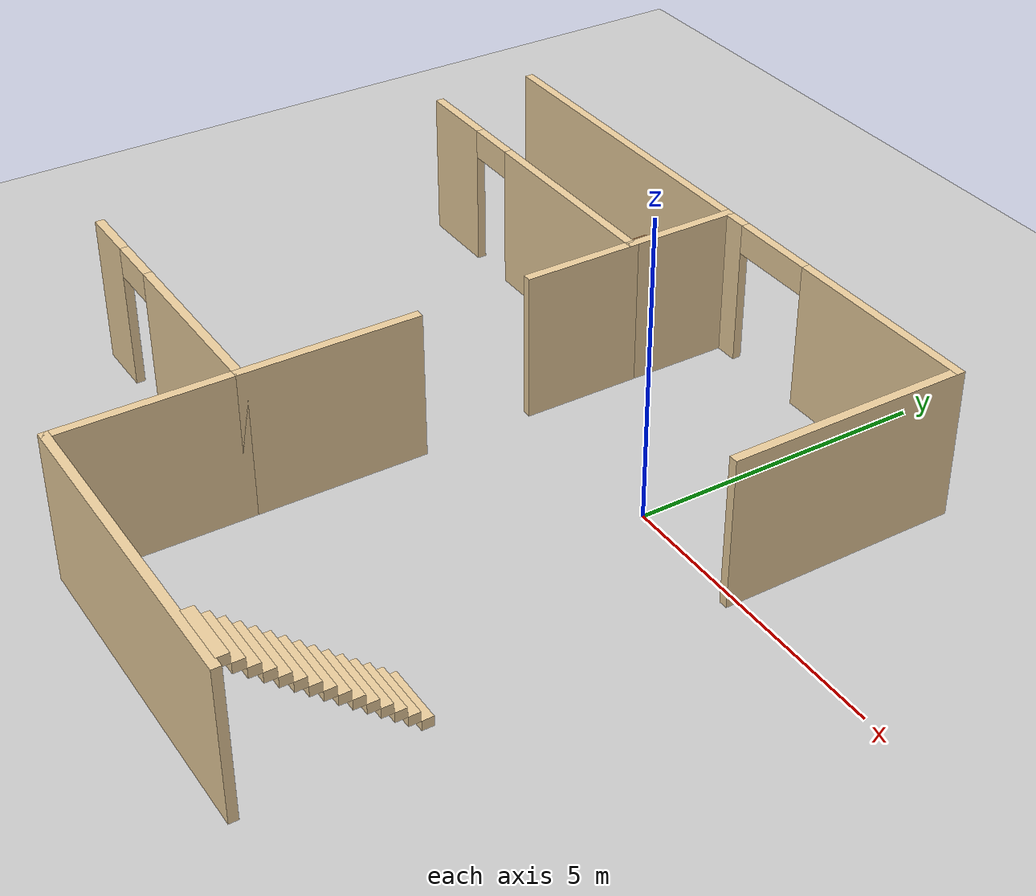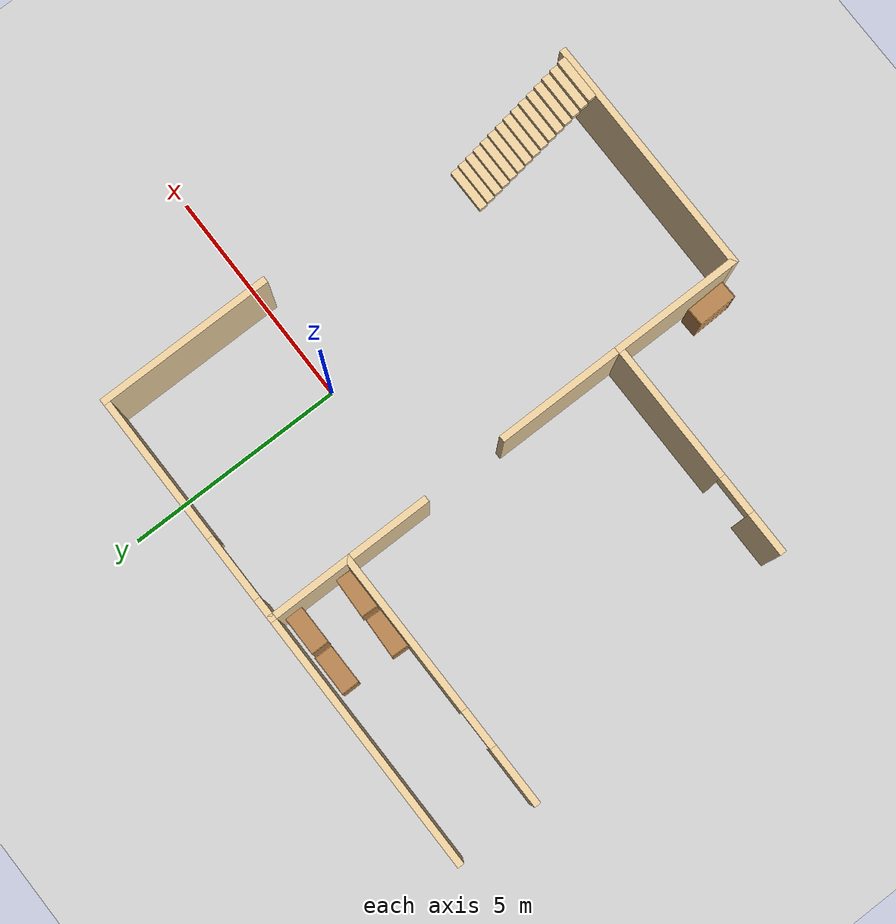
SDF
<sdf version="1.7">
 <world name="default">
  <model name="ground_plane">
   <static>1</static>
   <link name="link">
    <collision name="collision">
     <geometry><plane><normal>0 0 1</normal><size>100 100</size></plane></geometry>
     <surface>
      <contact><collide_bitmask>65535</collide_bitmask></contact>
      <friction><ode><mu>100</mu><mu2>50</mu2></ode></friction>
     </surface>
    </collision>
    <visual name="visual">
     <cast_shadows>0</cast_shadows>
     <geometry><plane><normal>0 0 1</normal><size>100 100</size></plane></geometry>
     <material>
      <script><uri>file://media/materials/scripts/gazebo.material</uri><name>Gazebo/Grey</name></script>
     </material>
    </visual>
   </link>
  </model>
  <model name="Health_2">
   <pose>1.45683 -1.97013 0 0 -0 0</pose>
   <link name="Stairs_1">
    <visual name="Stairs_1_Visual_0">
     <pose>0.20143 -2.88494 0.083333 0 -0 0</pose>
     <geometry><box><size>1 0.190191 0.166667</size></box></geometry>
     <material>
      <script><uri>file://media/materials/scripts/gazebo.material</uri><name>Gazebo/Grey</name></script>
      <ambient>0.921569 0.807843 0.615686 1</ambient>
     </material>
     <meta><layer>0</layer></meta>
    </visual>
    <collision name="Stairs_1_Collision_0">
     <geometry><box><size>1 0.190191 0.166667</size></box></geometry>
     <pose>0.20143 -2.88494 0.083333 0 -0 0</pose>
    </collision>
    <visual name="Stairs_1_Visual_1">
     <pose>0.20143 -3.07513 0.25 0 -0 0</pose>
     <geometry><box><size>1 0.190191 0.166667</size></box></geometry>
     <material>
      <script><uri>file://media/materials/scripts/gazebo.material</uri><name>Gazebo/Grey</name></script>
      <ambient>0.921569 0.807843 0.615686 1</ambient>
     </material>
     <meta><layer>0</layer></meta>
    </visual>
    <collision name="Stairs_1_Collision_1">
     <geometry><box><size>1 0.190191 0.166667</size></box></geometry>
     <pose>0.20143 -3.07513 0.25 0 -0 0</pose>
    </collision>
    <visual name="Stairs_1_Visual_2">
     <pose>0.20143 -3.26532 0.416667 0 -0 0</pose>
     <geometry><box><size>1 0.190191 0.166667</size></box></geometry>
     <material>
      <script><uri>file://media/materials/scripts/gazebo.material</uri><name>Gazebo/Grey</name></script>
      <ambient>0.921569 0.807843 0.615686 1</ambient>
     </material>
     <meta><layer>0</layer></meta>
    </visual>
    <collision name="Stairs_1_Collision_2">
     <geometry><box><size>1 0.190191 0.166667</size></box></geometry>
     <pose>0.20143 -3.26532 0.416667 0 -0 0</pose>
    </collision>
    <visual name="Stairs_1_Visual_3">
     <pose>0.20143 -3.45552 0.583333 0 -0 0</pose>
     <geometry><box><size>1 0.190191 0.166667</size></box></geometry>
     <material>
      <script><uri>file://media/materials/scripts/gazebo.material</uri><name>Gazebo/Grey</name></script>
      <ambient>0.921569 0.807843 0.615686 1</ambient>
     </material>
     <meta><layer>0</layer></meta>
    </visual>
    <collision name="Stairs_1_Collision_3">
     <geometry><box><size>1 0.190191 0.166667</size></box></geometry>
     <pose>0.20143 -3.45552 0.583333 0 -0 0</pose>
    </collision>
    <visual name="Stairs_1_Visual_4">
     <pose>0.20143 -3.64571 0.75 0 -0 0</pose>
     <geometry><box><size>1 0.190191 0.166667</size></box></geometry>
     <material>
      <script><uri>file://media/materials/scripts/gazebo.material</uri><name>Gazebo/Grey</name></script>
      <ambient>0.921569 0.807843 0.615686 1</ambient>
     </material>
     <meta><layer>0</layer></meta>
    </visual>
    <collision name="Stairs_1_Collision_4">
     <geometry><box><size>1 0.190191 0.166667</size></box></geometry>
     <pose>0.20143 -3.64571 0.75 0 -0 0</pose>
    </collision>
    <visual name="Stairs_1_Visual_5">
     <pose>0.20143 -3.8359 0.916667 0 -0 0</pose>
     <geometry><box><size>1 0.190191 0.166667</size></box></geometry>
     <material>
      <script><uri>file://media/materials/scripts/gazebo.material</uri><name>Gazebo/Grey</name></script>
      <ambient>0.921569 0.807843 0.615686 1</ambient>
     </material>
     <meta><layer>0</layer></meta>
    </visual>
    <collision name="Stairs_1_Collision_5">
     <geometry><box><size>1 0.190191 0.166667</size></box></geometry>
     <pose>0.20143 -3.8359 0.916667 0 -0 0</pose>
    </collision>
    <visual name="Stairs_1_Visual_6">
     <pose>0.20143 -4.02609 1.08333 0 -0 0</pose>
     <geometry><box><size>1 0.190191 0.166667</size></box></geometry>
     <material>
      <script><uri>file://media/materials/scripts/gazebo.material</uri><name>Gazebo/Grey</name></script>
      <ambient>0.921569 0.807843 0.615686 1</ambient>
     </material>
     <meta><layer>0</layer></meta>
    </visual>
    <collision name="Stairs_1_Collision_6">
     <geometry><box><size>1 0.190191 0.166667</size></box></geometry>
     <pose>0.20143 -4.02609 1.08333 0 -0 0</pose>
    </collision>
    <visual name="Stairs_1_Visual_7">
     <pose>0.20143 -4.21628 1.25 0 -0 0</pose>
     <geometry><box><size>1 0.190191 0.166667</size></box></geometry>
     <material>
      <script><uri>file://media/materials/scripts/gazebo.material</uri><name>Gazebo/Grey</name></script>
      <ambient>0.921569 0.807843 0.615686 1</ambient>
     </material>
     <meta><layer>0</layer></meta>
    </visual>
    <collision name="Stairs_1_Collision_7">
     <geometry><box><size>1 0.190191 0.166667</size></box></geometry>
     <pose>0.20143 -4.21628 1.25 0 -0 0</pose>
    </collision>
    <visual name="Stairs_1_Visual_8">
     <pose>0.20143 -4.40647 1.41667 0 -0 0</pose>
     <geometry><box><size>1 0.190191 0.166667</size></box></geometry>
     <material>
      <script><uri>file://media/materials/scripts/gazebo.material</uri><name>Gazebo/Grey</name></script>
      <ambient>0.921569 0.807843 0.615686 1</ambient>
     </material>
     <meta><layer>0</layer></meta>
    </visual>
    <collision name="Stairs_1_Collision_8">
     <geometry><box><size>1 0.190191 0.166667</size></box></geometry>
     <pose>0.20143 -4.40647 1.41667 0 -0 0</pose>
    </collision>
    <visual name="Stairs_1_Visual_9">
     <pose>0.20143 -4.59666 1.58333 0 -0 0</pose>
     <geometry><box><size>1 0.190191 0.166667</size></box></geometry>
     <material>
      <script><uri>file://media/materials/scripts/gazebo.material</uri><name>Gazebo/Grey</name></script>
      <ambient>0.921569 0.807843 0.615686 1</ambient>
     </material>
     <meta><layer>0</layer></meta>
    </visual>
    <collision name="Stairs_1_Collision_9">
     <geometry><box><size>1 0.190191 0.166667</size></box></geometry>
     <pose>0.20143 -4.59666 1.58333 0 -0 0</pose>
    </collision>
    <visual name="Stairs_1_Visual_10">
     <pose>0.20143 -4.78685 1.75 0 -0 0</pose>
     <geometry><box><size>1 0.190191 0.166667</size></box></geometry>
     <material>
      <script><uri>file://media/materials/scripts/gazebo.material</uri><name>Gazebo/Grey</name></script>
      <ambient>0.921569 0.807843 0.615686 1</ambient>
     </material>
     <meta><layer>0</layer></meta>
    </visual>
    <collision name="Stairs_1_Collision_10">
     <geometry><box><size>1 0.190191 0.166667</size></box></geometry>
     <pose>0.20143 -4.78685 1.75 0 -0 0</pose>
    </collision>
    <visual name="Stairs_1_Visual_11">
     <pose>0.20143 -4.97705 1.91667 0 -0 0</pose>
     <geometry><box><size>1 0.190191 0.166667</size></box></geometry>
     <material>
      <script><uri>file://media/materials/scripts/gazebo.material</uri><name>Gazebo/Grey</name></script>
      <ambient>0.921569 0.807843 0.615686 1</ambient>
     </material>
     <meta><layer>0</layer></meta>
    </visual>
    <collision name="Stairs_1_Collision_11">
     <geometry><box><size>1 0.190191 0.166667</size></box></geometry>
     <pose>0.20143 -4.97705 1.91667 0 -0 0</pose>
    </collision>
    <visual name="Stairs_1_Visual_12">
     <pose>0.20143 -5.16724 2.08333 0 -0 0</pose>
     <geometry><box><size>1 0.190191 0.166667</size></box></geometry>
     <material>
      <script><uri>file://media/materials/scripts/gazebo.material</uri><name>Gazebo/Grey</name></script>
      <ambient>0.921569 0.807843 0.615686 1</ambient>
     </material>
     <meta><layer>0</layer></meta>
    </visual>
    <collision name="Stairs_1_Collision_12">
     <geometry><box><size>1 0.190191 0.166667</size></box></geometry>
     <pose>0.20143 -5.16724 2.08333 0 -0 0</pose>
    </collision>
    <visual name="Stairs_1_Visual_13">
     <pose>0.20143 -5.35743 2.25 0 -0 0</pose>
     <geometry><box><size>1 0.190191 0.166667</size></box></geometry>
     <material>
      <script><uri>file://media/materials/scripts/gazebo.material</uri><name>Gazebo/Grey</name></script>
      <ambient>0.921569 0.807843 0.615686 1</ambient>
     </material>
     <meta><layer>0</layer></meta>
    </visual>
    <collision name="Stairs_1_Collision_13">
     <geometry><box><size>1 0.190191 0.166667</size></box></geometry>
     <pose>0.20143 -5.35743 2.25 0 -0 0</pose>
    </collision>
    <visual name="Stairs_1_Visual_14">
     <pose>0.20143 -5.54762 2.41667 0 -0 0</pose>
     <geometry><box><size>1 0.190191 0.166667</size></box></geometry>
     <material>
      <script><uri>file://media/materials/scripts/gazebo.material</uri><name>Gazebo/Grey</name></script>
      <ambient>0.921569 0.807843 0.615686 1</ambient>
     </material>
     <meta><layer>0</layer></meta>
    </visual>
    <collision name="Stairs_1_Collision_14">
     <geometry><box><size>1 0.190191 0.166667</size></box></geometry>
     <pose>0.20143 -5.54762 2.41667 0 -0 0</pose>
    </collision>
   </link>
   <link name="Wall_107">
    <collision name="Wall_107_Collision">
     <geometry><box><size>6 0.15 2.5</size></box></geometry>
     <pose>0 0 1.25 0 -0 0</pose>
    </collision>
    <visual name="Wall_107_Visual">
     <pose>0 0 1.25 0 -0 0</pose>
     <geometry><box><size>6 0.15 2.5</size></box></geometry>
     <material>
      <script><uri>file://media/materials/scripts/gazebo.material</uri><name>Gazebo/Grey</name></script>
      <ambient>0.921569 0.807843 0.615686 1</ambient>
     </material>
     <meta><layer>0</layer></meta>
    </visual>
    <pose>-7.51736 5.7 0 0 -0 0</pose>
   </link>
   <link name="Wall_122">
    <collision name="Wall_122_Collision">
     <geometry><box><size>2 0.15 2.5</size></box></geometry>
     <pose>0 0 1.25 0 -0 0</pose>
    </collision>
    <visual name="Wall_122_Visual">
     <pose>0 0 1.25 0 -0 0</pose>
     <geometry><box><size>2 0.15 2.5</size></box></geometry>
     <material>
      <script><uri>file://media/materials/scripts/gazebo.material</uri><name>Gazebo/Grey</name></script>
      <ambient>0.921569 0.807843 0.615686 1</ambient>
     </material>
     <meta><layer>0</layer></meta>
    </visual>
    <pose>-4.59236 4.775 0 0 -0 -1.5708</pose>
   </link>
   <link name="Wall_123">
    <pose>-7.51736 3.85 0 0 -0 3.14159</pose>
    <visual name="Wall_123_Visual_0">
     <pose>-1.14066 0 1.25 0 -0 0</pose>
     <geometry><box><size>3.71867 0.15 2.5</size></box></geometry>
     <material>
      <script><uri>file://media/materials/scripts/gazebo.material</uri><name>Gazebo/Grey</name></script>
      <ambient>0.921569 0.807843 0.615686 1</ambient>
     </material>
     <meta><layer>0</layer></meta>
    </visual>
    <collision name="Wall_123_Collision_0">
     <geometry><box><size>3.71867 0.15 2.5</size></box></geometry>
     <pose>-1.14066 0 1.25 0 -0 0</pose>
    </collision>
    <visual name="Wall_123_Visual_1">
     <pose>2.30934 0 1.25 0 -0 0</pose>
     <geometry><box><size>1.38133 0.15 2.5</size></box></geometry>
     <material>
      <script><uri>file://media/materials/scripts/gazebo.material</uri><name>Gazebo/Grey</name></script>
      <ambient>0.921569 0.807843 0.615686 1</ambient>
     </material>
     <meta><layer>0</layer></meta>
    </visual>
    <collision name="Wall_123_Collision_1">
     <geometry><box><size>1.38133 0.15 2.5</size></box></geometry>
     <pose>2.30934 0 1.25 0 -0 0</pose>
    </collision>
    <visual name="Wall_123_Visual_2">
     <pose>1.16867 0 2.25 0 -0 0</pose>
     <geometry><box><size>0.9 0.15 0.5</size></box></geometry>
     <material>
      <script><uri>file://media/materials/scripts/gazebo.material</uri><name>Gazebo/Grey</name></script>
      <ambient>0.921569 0.807843 0.615686 1</ambient>
     </material>
     <meta><layer>0</layer></meta>
    </visual>
    <collision name="Wall_123_Collision_2">
     <geometry><box><size>0.9 0.15 0.5</size></box></geometry>
     <pose>1.16867 0 2.25 0 -0 0</pose>
    </collision>
   </link>
   <link name="Wall_125">
    <collision name="Wall_125_Collision">
     <geometry><box><size>2 0.15 2.5</size></box></geometry>
     <pose>0 0 1.25 0 -0 0</pose>
    </collision>
    <visual name="Wall_125_Visual">
     <pose>0 0 1.25 0 -0 0</pose>
     <geometry><box><size>2 0.15 2.5</size></box></geometry>
     <material>
      <script><uri>file://media/materials/scripts/gazebo.material</uri><name>Gazebo/Grey</name></script>
      <ambient>0.921569 0.807843 0.615686 1</ambient>
     </material>
     <meta><layer>0</layer></meta>
    </visual>
    <pose>-4.59236 2.925 0 0 -0 -1.5708</pose>
   </link>
   <link name="Wall_127">
    <collision name="Wall_127_Collision">
     <geometry><box><size>3 0.15 2.5</size></box></geometry>
     <pose>0 0 1.25 0 -0 0</pose>
    </collision>
    <visual name="Wall_127_Visual">
     <pose>0 0 1.25 0 -0 0</pose>
     <geometry><box><size>3 0.15 2.5</size></box></geometry>
     <material>
      <script><uri>file://media/materials/scripts/gazebo.material</uri><name>Gazebo/Grey</name></script>
      <ambient>0.921569 0.807843 0.615686 1</ambient>
     </material>
     <meta><layer>0</layer></meta>
    </visual>
    <pose>-4.56923 -1.425 0 0 -0 1.5708</pose>
   </link>
   <link name="Wall_138">
    <pose>-1.91736 5.7 0 0 -0 0</pose>
    <visual name="Wall_138_Visual_0">
     <pose>-2.48035 0 1.25 0 -0 0</pose>
     <geometry><box><size>0.539308 0.15 2.5</size></box></geometry>
     <material>
      <script><uri>file://media/materials/scripts/gazebo.material</uri><name>Gazebo/Grey</name></script>
      <ambient>0.921569 0.807843 0.615686 1</ambient>
     </material>
     <meta><layer>0</layer></meta>
    </visual>
    <collision name="Wall_138_Collision_0">
     <geometry><box><size>0.539308 0.15 2.5</size></box></geometry>
     <pose>-2.48035 0 1.25 0 -0 0</pose>
    </collision>
    <visual name="Wall_138_Visual_1">
     <pose>1.01965 0 1.25 0 -0 0</pose>
     <geometry><box><size>3.46069 0.15 2.5</size></box></geometry>
     <material>
      <script><uri>file://media/materials/scripts/gazebo.material</uri><name>Gazebo/Grey</name></script>
      <ambient>0.921569 0.807843 0.615686 1</ambient>
     </material>
     <meta><layer>0</layer></meta>
    </visual>
    <collision name="Wall_138_Collision_1">
     <geometry><box><size>3.46069 0.15 2.5</size></box></geometry>
     <pose>1.01965 0 1.25 0 -0 0</pose>
    </collision>
    <visual name="Wall_138_Visual_2">
     <pose>-1.46069 0 2.25 0 -0 0</pose>
     <geometry><box><size>1.5 0.15 0.5</size></box></geometry>
     <material>
      <script><uri>file://media/materials/scripts/gazebo.material</uri><name>Gazebo/Grey</name></script>
      <ambient>0.921569 0.807843 0.615686 1</ambient>
     </material>
     <meta><layer>0</layer></meta>
    </visual>
    <collision name="Wall_138_Collision_2">
     <geometry><box><size>1.5 0.15 0.5</size></box></geometry>
     <pose>-1.46069 0 2.25 0 -0 0</pose>
    </collision>
   </link>
   <link name="Wall_140">
    <collision name="Wall_140_Collision">
     <geometry><box><size>4 0.15 2.5</size></box></geometry>
     <pose>0 0 1.25 0 -0 0</pose>
    </collision>
    <visual name="Wall_140_Visual">
     <pose>0 0 1.25 0 -0 0</pose>
     <geometry><box><size>4 0.15 2.5</size></box></geometry>
     <material>
      <script><uri>file://media/materials/scripts/gazebo.material</uri><name>Gazebo/Grey</name></script>
      <ambient>0.921569 0.807843 0.615686 1</ambient>
     </material>
     <meta><layer>0</layer></meta>
    </visual>
    <pose>0.757639 3.775 0 0 -0 -1.5708</pose>
   </link>
   <link name="Wall_32">
    <pose>-7.06923 -2.85 0 0 -0 0</pose>
    <visual name="Wall_32_Visual_0">
     <pose>-2.08046 0 1.25 0 -0 0</pose>
     <geometry><box><size>0.98908 0.15 2.5</size></box></geometry>
     <material>
      <script><uri>file://media/materials/scripts/gazebo.material</uri><name>Gazebo/Grey</name></script>
      <ambient>0.921569 0.807843 0.615686 1</ambient>
     </material>
     <meta><layer>0</layer></meta>
    </visual>
    <collision name="Wall_32_Collision_0">
     <geometry><box><size>0.98908 0.15 2.5</size></box></geometry>
     <pose>-2.08046 0 1.25 0 -0 0</pose>
    </collision>
    <visual name="Wall_32_Visual_1">
     <pose>0.94454 0 1.25 0 -0 0</pose>
     <geometry><box><size>3.26092 0.15 2.5</size></box></geometry>
     <material>
      <script><uri>file://media/materials/scripts/gazebo.material</uri><name>Gazebo/Grey</name></script>
      <ambient>0.921569 0.807843 0.615686 1</ambient>
     </material>
     <meta><layer>0</layer></meta>
    </visual>
    <collision name="Wall_32_Collision_1">
     <geometry><box><size>3.26092 0.15 2.5</size></box></geometry>
     <pose>0.94454 0 1.25 0 -0 0</pose>
    </collision>
    <visual name="Wall_32_Visual_2">
     <pose>-1.13592 0 2.25 0 -0 0</pose>
     <geometry><box><size>0.9 0.15 0.5</size></box></geometry>
     <material>
      <script><uri>file://media/materials/scripts/gazebo.material</uri><name>Gazebo/Grey</name></script>
      <ambient>0.921569 0.807843 0.615686 1</ambient>
     </material>
     <meta><layer>0</layer></meta>
    </visual>
    <collision name="Wall_32_Collision_2">
     <geometry><box><size>0.9 0.15 0.5</size></box></geometry>
     <pose>-1.13592 0 2.25 0 -0 0</pose>
    </collision>
   </link>
   <link name="Wall_33">
    <collision name="Wall_33_Collision">
     <geometry><box><size>3 0.15 2.5</size></box></geometry>
     <pose>0 0 1.25 0 -0 0</pose>
    </collision>
    <visual name="Wall_33_Visual">
     <pose>0 0 1.25 0 -0 0</pose>
     <geometry><box><size>3 0.15 2.5</size></box></geometry>
     <material>
      <script><uri>file://media/materials/scripts/gazebo.material</uri><name>Gazebo/Grey</name></script>
      <ambient>0.921569 0.807843 0.615686 1</ambient>
     </material>
     <meta><layer>0</layer></meta>
    </visual>
    <pose>-4.56923 -4.275 0 0 -0 -1.5708</pose>
   </link>
   <link name="Wall_50">
    <collision name="Wall_50_Collision">
     <geometry><box><size>5.50015 0.15 2.5</size></box></geometry>
     <pose>0 0 1.25 0 -0 0</pose>
    </collision>
    <visual name="Wall_50_Visual">
     <pose>0 0 1.25 0 -0 0</pose>
     <geometry><box><size>5.50015 0.15 2.5</size></box></geometry>
     <material>
      <script><uri>file://media/materials/scripts/gazebo.material</uri><name>Gazebo/Grey</name></script>
      <ambient>0.921569 0.807843 0.615686 1</ambient>
     </material>
     <meta><layer>0</layer></meta>
    </visual>
    <pose>-1.89423 -5.7 0 0 -0 0</pose>
   </link>
   <static>1</static>
  </model>
  <model name="bookshelf">
   <static>1</static>
   <link name="link">
    <inertial><mass>1</mass></inertial>
    <collision name="back">
     <pose>0 0.005 0.6 0 -0 0</pose>
     <geometry><box><size>0.9 0.01 1.2</size></box></geometry>
    </collision>
    <visual name="visual1">
     <pose>0 0.005 0.6 0 -0 0</pose>
     <geometry><box><size>0.9 0.01 1.2</size></box></geometry>
     <material>
      <script><uri>file://media/materials/scripts/gazebo.material</uri><name>Gazebo/Wood</name></script>
     </material>
    </visual>
    <collision name="left_side">
     <pose>0.45 -0.195 0.6 0 -0 0</pose>
     <geometry><box><size>0.02 0.4 1.2</size></box></geometry>
    </collision>
    <visual name="visual2">
     <pose>0.45 -0.195 0.6 0 -0 0</pose>
     <geometry><box><size>0.02 0.4 1.2</size></box></geometry>
     <material>
      <script><uri>file://media/materials/scripts/gazebo.material</uri><name>Gazebo/Wood</name></script>
     </material>
    </visual>
    <collision name="right_side">
     <pose>-0.45 -0.195 0.6 0 -0 0</pose>
     <geometry><box><size>0.02 0.4 1.2</size></box></geometry>
    </collision>
    <visual name="visual3">
     <pose>-0.45 -0.195 0.6 0 -0 0</pose>
     <geometry><box><size>0.02 0.4 1.2</size></box></geometry>
     <material>
      <script><uri>file://media/materials/scripts/gazebo.material</uri><name>Gazebo/Wood</name></script>
     </material>
    </visual>
    <collision name="bottom">
     <pose>0 -0.195 0.03 0 -0 0</pose>
     <geometry><box><size>0.88 0.4 0.06</size></box></geometry>
    </collision>
    <visual name="visual4">
     <pose>0 -0.195 0.03 0 -0 0</pose>
     <geometry><box><size>0.88 0.4 0.06</size></box></geometry>
     <material>
      <script><uri>file://media/materials/scripts/gazebo.material</uri><name>Gazebo/Wood</name></script>
     </material>
    </visual>
    <collision name="top">
     <pose>0 -0.195 1.19 0 -0 0</pose>
     <geometry><box><size>0.88 0.4 0.02</size></box></geometry>
    </collision>
    <visual name="visual5">
     <pose>0 -0.195 1.19 0 -0 0</pose>
     <geometry><box><size>0.88 0.4 0.02</size></box></geometry>
     <material>
      <script><uri>file://media/materials/scripts/gazebo.material</uri><name>Gazebo/Wood</name></script>
     </material>
    </visual>
    <collision name="low_shelf">
     <pose>0 -0.195 0.43 0 -0 0</pose>
     <geometry><box><size>0.88 0.4 0.02</size></box></geometry>
    </collision>
    <visual name="visual6">
     <pose>0 -0.195 0.43 0 -0 0</pose>
     <geometry><box><size>0.88 0.4 0.02</size></box></geometry>
     <material>
      <script><uri>file://media/materials/scripts/gazebo.material</uri><name>Gazebo/Wood</name></script>
     </material>
    </visual>
    <collision name="high_shelf">
     <pose>0 -0.195 0.8 0 -0 0</pose>
     <geometry><box><size>0.88 0.4 0.02</size></box></geometry>
    </collision>
    <visual name="visual7">
     <pose>0 -0.195 0.8 0 -0 0</pose>
     <geometry><box><size>0.88 0.4 0.02</size></box></geometry>
     <material>
      <script><uri>file://media/materials/scripts/gazebo.material</uri><name>Gazebo/Wood</name></script>
     </material>
    </visual>
   </link>
   <pose>-3.62888 3.55135 0 0 -0 0</pose>
  </model>
  <model name="bookshelf_0">
   <static>1</static>
   <link name="link">
    <inertial><mass>1</mass></inertial>
    <collision name="back">
     <pose>0 0.005 0.6 0 -0 0</pose>
     <geometry><box><size>0.9 0.01 1.2</size></box></geometry>
    </collision>
    <visual name="visual1">
     <pose>0 0.005 0.6 0 -0 0</pose>
     <geometry><box><size>0.9 0.01 1.2</size></box></geometry>
     <material>
      <script><uri>file://media/materials/scripts/gazebo.material</uri><name>Gazebo/Wood</name></script>
     </material>
    </visual>
    <collision name="left_side">
     <pose>0.45 -0.195 0.6 0 -0 0</pose>
     <geometry><box><size>0.02 0.4 1.2</size></box></geometry>
    </collision>
    <visual name="visual2">
     <pose>0.45 -0.195 0.6 0 -0 0</pose>
     <geometry><box><size>0.02 0.4 1.2</size></box></geometry>
     <material>
      <script><uri>file://media/materials/scripts/gazebo.material</uri><name>Gazebo/Wood</name></script>
     </material>
    </visual>
    <collision name="right_side">
     <pose>-0.45 -0.195 0.6 0 -0 0</pose>
     <geometry><box><size>0.02 0.4 1.2</size></box></geometry>
    </collision>
    <visual name="visual3">
     <pose>-0.45 -0.195 0.6 0 -0 0</pose>
     <geometry><box><size>0.02 0.4 1.2</size></box></geometry>
     <material>
      <script><uri>file://media/materials/scripts/gazebo.material</uri><name>Gazebo/Wood</name></script>
     </material>
    </visual>
    <collision name="bottom">
     <pose>0 -0.195 0.03 0 -0 0</pose>
     <geometry><box><size>0.88 0.4 0.06</size></box></geometry>
    </collision>
    <visual name="visual4">
     <pose>0 -0.195 0.03 0 -0 0</pose>
     <geometry><box><size>0.88 0.4 0.06</size></box></geometry>
     <material>
      <script><uri>file://media/materials/scripts/gazebo.material</uri><name>Gazebo/Wood</name></script>
     </material>
    </visual>
    <collision name="top">
     <pose>0 -0.195 1.19 0 -0 0</pose>
     <geometry><box><size>0.88 0.4 0.02</size></box></geometry>
    </collision>
    <visual name="visual5">
     <pose>0 -0.195 1.19 0 -0 0</pose>
     <geometry><box><size>0.88 0.4 0.02</size></box></geometry>
     <material>
      <script><uri>file://media/materials/scripts/gazebo.material</uri><name>Gazebo/Wood</name></script>
     </material>
    </visual>
    <collision name="low_shelf">
     <pose>0 -0.195 0.43 0 -0 0</pose>
     <geometry><box><size>0.88 0.4 0.02</size></box></geometry>
    </collision>
    <visual name="visual6">
     <pose>0 -0.195 0.43 0 -0 0</pose>
     <geometry><box><size>0.88 0.4 0.02</size></box></geometry>
     <material>
      <script><uri>file://media/materials/scripts/gazebo.material</uri><name>Gazebo/Wood</name></script>
     </material>
    </visual>
    <collision name="high_shelf">
     <pose>0 -0.195 0.8 0 -0 0</pose>
     <geometry><box><size>0.88 0.4 0.02</size></box></geometry>
    </collision>
    <visual name="visual7">
     <pose>0 -0.195 0.8 0 -0 0</pose>
     <geometry><box><size>0.88 0.4 0.02</size></box></geometry>
     <material>
      <script><uri>file://media/materials/scripts/gazebo.material</uri><name>Gazebo/Wood</name></script>
     </material>
    </visual>
   </link>
   <pose>-4.62225 3.55775 0 0 -0 0</pose>
  </model>
  <model name="bookshelf_2">
   <static>1</static>
   <link name="link">
    <inertial><mass>1</mass></inertial>
    <collision name="back">
     <pose>0 0.005 0.6 0 -0 0</pose>
     <geometry><box><size>0.9 0.01 1.2</size></box></geometry>
    </collision>
    <visual name="visual1">
     <pose>0 0.005 0.6 0 -0 0</pose>
     <geometry><box><size>0.9 0.01 1.2</size></box></geometry>
     <material>
      <script><uri>file://media/materials/scripts/gazebo.material</uri><name>Gazebo/Wood</name></script>
     </material>
    </visual>
    <collision name="left_side">
     <pose>0.45 -0.195 0.6 0 -0 0</pose>
     <geometry><box><size>0.02 0.4 1.2</size></box></geometry>
    </collision>
    <visual name="visual2">
     <pose>0.45 -0.195 0.6 0 -0 0</pose>
     <geometry><box><size>0.02 0.4 1.2</size></box></geometry>
     <material>
      <script><uri>file://media/materials/scripts/gazebo.material</uri><name>Gazebo/Wood</name></script>
     </material>
    </visual>
    <collision name="right_side">
     <pose>-0.45 -0.195 0.6 0 -0 0</pose>
     <geometry><box><size>0.02 0.4 1.2</size></box></geometry>
    </collision>
    <visual name="visual3">
     <pose>-0.45 -0.195 0.6 0 -0 0</pose>
     <geometry><box><size>0.02 0.4 1.2</size></box></geometry>
     <material>
      <script><uri>file://media/materials/scripts/gazebo.material</uri><name>Gazebo/Wood</name></script>
     </material>
    </visual>
    <collision name="bottom">
     <pose>0 -0.195 0.03 0 -0 0</pose>
     <geometry><box><size>0.88 0.4 0.06</size></box></geometry>
    </collision>
    <visual name="visual4">
     <pose>0 -0.195 0.03 0 -0 0</pose>
     <geometry><box><size>0.88 0.4 0.06</size></box></geometry>
     <material>
      <script><uri>file://media/materials/scripts/gazebo.material</uri><name>Gazebo/Wood</name></script>
     </material>
    </visual>
    <collision name="top">
     <pose>0 -0.195 1.19 0 -0 0</pose>
     <geometry><box><size>0.88 0.4 0.02</size></box></geometry>
    </collision>
    <visual name="visual5">
     <pose>0 -0.195 1.19 0 -0 0</pose>
     <geometry><box><size>0.88 0.4 0.02</size></box></geometry>
     <material>
      <script><uri>file://media/materials/scripts/gazebo.material</uri><name>Gazebo/Wood</name></script>
     </material>
    </visual>
    <collision name="low_shelf">
     <pose>0 -0.195 0.43 0 -0 0</pose>
     <geometry><box><size>0.88 0.4 0.02</size></box></geometry>
    </collision>
    <visual name="visual6">
     <pose>0 -0.195 0.43 0 -0 0</pose>
     <geometry><box><size>0.88 0.4 0.02</size></box></geometry>
     <material>
      <script><uri>file://media/materials/scripts/gazebo.material</uri><name>Gazebo/Wood</name></script>
     </material>
    </visual>
    <collision name="high_shelf">
     <pose>0 -0.195 0.8 0 -0 0</pose>
     <geometry><box><size>0.88 0.4 0.02</size></box></geometry>
    </collision>
    <visual name="visual7">
     <pose>0 -0.195 0.8 0 -0 0</pose>
     <geometry><box><size>0.88 0.4 0.02</size></box></geometry>
     <material>
      <script><uri>file://media/materials/scripts/gazebo.material</uri><name>Gazebo/Wood</name></script>
     </material>
    </visual>
   </link>
   <pose>-3.66454 1.91785 0 0 -0 3.1</pose>
  </model>
  <model name="bookshelf_3">
   <static>1</static>
   <link name="link">
    <inertial><mass>1</mass></inertial>
    <collision name="back">
     <pose>0 0.005 0.6 0 -0 0</pose>
     <geometry><box><size>0.9 0.01 1.2</size></box></geometry>
    </collision>
    <visual name="visual1">
     <pose>0 0.005 0.6 0 -0 0</pose>
     <geometry><box><size>0.9 0.01 1.2</size></box></geometry>
     <material>
      <script><uri>file://media/materials/scripts/gazebo.material</uri><name>Gazebo/Wood</name></script>
     </material>
    </visual>
    <collision name="left_side">
     <pose>0.45 -0.195 0.6 0 -0 0</pose>
     <geometry><box><size>0.02 0.4 1.2</size></box></geometry>
    </collision>
    <visual name="visual2">
     <pose>0.45 -0.195 0.6 0 -0 0</pose>
     <geometry><box><size>0.02 0.4 1.2</size></box></geometry>
     <material>
      <script><uri>file://media/materials/scripts/gazebo.material</uri><name>Gazebo/Wood</name></script>
     </material>
    </visual>
    <collision name="right_side">
     <pose>-0.45 -0.195 0.6 0 -0 0</pose>
     <geometry><box><size>0.02 0.4 1.2</size></box></geometry>
    </collision>
    <visual name="visual3">
     <pose>-0.45 -0.195 0.6 0 -0 0</pose>
     <geometry><box><size>0.02 0.4 1.2</size></box></geometry>
     <material>
      <script><uri>file://media/materials/scripts/gazebo.material</uri><name>Gazebo/Wood</name></script>
     </material>
    </visual>
    <collision name="bottom">
     <pose>0 -0.195 0.03 0 -0 0</pose>
     <geometry><box><size>0.88 0.4 0.06</size></box></geometry>
    </collision>
    <visual name="visual4">
     <pose>0 -0.195 0.03 0 -0 0</pose>
     <geometry><box><size>0.88 0.4 0.06</size></box></geometry>
     <material>
      <script><uri>file://media/materials/scripts/gazebo.material</uri><name>Gazebo/Wood</name></script>
     </material>
    </visual>
    <collision name="top">
     <pose>0 -0.195 1.19 0 -0 0</pose>
     <geometry><box><size>0.88 0.4 0.02</size></box></geometry>
    </collision>
    <visual name="visual5">
     <pose>0 -0.195 1.19 0 -0 0</pose>
     <geometry><box><size>0.88 0.4 0.02</size></box></geometry>
     <material>
      <script><uri>file://media/materials/scripts/gazebo.material</uri><name>Gazebo/Wood</name></script>
     </material>
    </visual>
    <collision name="low_shelf">
     <pose>0 -0.195 0.43 0 -0 0</pose>
     <geometry><box><size>0.88 0.4 0.02</size></box></geometry>
    </collision>
    <visual name="visual6">
     <pose>0 -0.195 0.43 0 -0 0</pose>
     <geometry><box><size>0.88 0.4 0.02</size></box></geometry>
     <material>
      <script><uri>file://media/materials/scripts/gazebo.material</uri><name>Gazebo/Wood</name></script>
     </material>
    </visual>
    <collision name="high_shelf">
     <pose>0 -0.195 0.8 0 -0 0</pose>
     <geometry><box><size>0.88 0.4 0.02</size></box></geometry>
    </collision>
    <visual name="visual7">
     <pose>0 -0.195 0.8 0 -0 0</pose>
     <geometry><box><size>0.88 0.4 0.02</size></box></geometry>
     <material>
      <script><uri>file://media/materials/scripts/gazebo.material</uri><name>Gazebo/Wood</name></script>
     </material>
    </visual>
   </link>
   <pose>-4.65456 1.92895 0 0 -0 3.1</pose>
  </model>
  <model name="bookshelf_6">
   <static>1</static>
   <link name="link">
    <inertial><mass>1</mass></inertial>
    <collision name="back">
     <pose>0 0.005 0.6 0 -0 0</pose>
     <geometry><box><size>0.9 0.01 1.2</size></box></geometry>
    </collision>
    <visual name="visual1">
     <pose>0 0.005 0.6 0 -0 0</pose>
     <geometry><box><size>0.9 0.01 1.2</size></box></geometry>
     <material>
      <script><uri>file://media/materials/scripts/gazebo.material</uri><name>Gazebo/Wood</name></script>
     </material>
    </visual>
    <collision name="left_side">
     <pose>0.45 -0.195 0.6 0 -0 0</pose>
     <geometry><box><size>0.02 0.4 1.2</size></box></geometry>
    </collision>
    <visual name="visual2">
     <pose>0.45 -0.195 0.6 0 -0 0</pose>
     <geometry><box><size>0.02 0.4 1.2</size></box></geometry>
     <material>
      <script><uri>file://media/materials/scripts/gazebo.material</uri><name>Gazebo/Wood</name></script>
     </material>
    </visual>
    <collision name="right_side">
     <pose>-0.45 -0.195 0.6 0 -0 0</pose>
     <geometry><box><size>0.02 0.4 1.2</size></box></geometry>
    </collision>
    <visual name="visual3">
     <pose>-0.45 -0.195 0.6 0 -0 0</pose>
     <geometry><box><size>0.02 0.4 1.2</size></box></geometry>
     <material>
      <script><uri>file://media/materials/scripts/gazebo.material</uri><name>Gazebo/Wood</name></script>
     </material>
    </visual>
    <collision name="bottom">
     <pose>0 -0.195 0.03 0 -0 0</pose>
     <geometry><box><size>0.88 0.4 0.06</size></box></geometry>
    </collision>
    <visual name="visual4">
     <pose>0 -0.195 0.03 0 -0 0</pose>
     <geometry><box><size>0.88 0.4 0.06</size></box></geometry>
     <material>
      <script><uri>file://media/materials/scripts/gazebo.material</uri><name>Gazebo/Wood</name></script>
     </material>
    </visual>
    <collision name="top">
     <pose>0 -0.195 1.19 0 -0 0</pose>
     <geometry><box><size>0.88 0.4 0.02</size></box></geometry>
    </collision>
    <visual name="visual5">
     <pose>0 -0.195 1.19 0 -0 0</pose>
     <geometry><box><size>0.88 0.4 0.02</size></box></geometry>
     <material>
      <script><uri>file://media/materials/scripts/gazebo.material</uri><name>Gazebo/Wood</name></script>
     </material>
    </visual>
    <collision name="low_shelf">
     <pose>0 -0.195 0.43 0 -0 0</pose>
     <geometry><box><size>0.88 0.4 0.02</size></box></geometry>
    </collision>
    <visual name="visual6">
     <pose>0 -0.195 0.43 0 -0 0</pose>
     <geometry><box><size>0.88 0.4 0.02</size></box></geometry>
     <material>
      <script><uri>file://media/materials/scripts/gazebo.material</uri><name>Gazebo/Wood</name></script>
     </material>
    </visual>
    <collision name="high_shelf">
     <pose>0 -0.195 0.8 0 -0 0</pose>
     <geometry><box><size>0.88 0.4 0.02</size></box></geometry>
    </collision>
    <visual name="visual7">
     <pose>0 -0.195 0.8 0 -0 0</pose>
     <geometry><box><size>0.88 0.4 0.02</size></box></geometry>
     <material>
      <script><uri>file://media/materials/scripts/gazebo.material</uri><name>Gazebo/Wood</name></script>
     </material>
    </visual>
   </link>
   <pose>-3.21391 -7.08403 0 0 0 -1.53736</pose>
  </model>
 </world>
</sdf>
